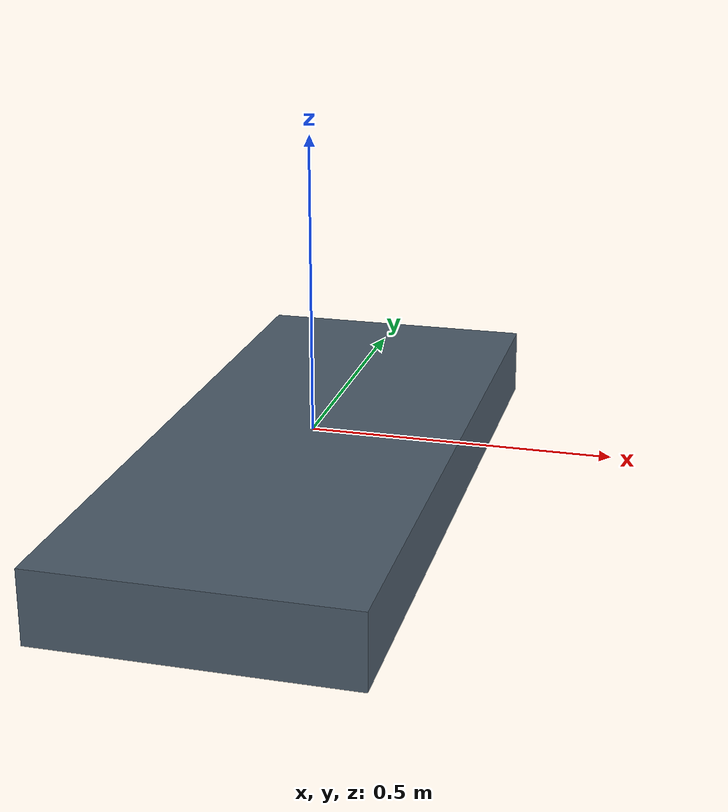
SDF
<?xml version="1.0"?>
<sdf version="1.6">
  <model name="helmet_sampling_bridge">
    <static>true</static>
    <link name="link">
      <collision name="bridge_collision">
        <pose>0 0 -0.06 0 0 0</pose>
        <geometry><box><size>0.50 1.20 0.12</size></box></geometry>
      </collision>
      <visual name="bridge_visual">
        <pose>0 0 -0.06 0 0 0</pose>
        <geometry><box><size>0.50 1.20 0.12</size></box></geometry>
        <material>
          <ambient>0.20 0.24 0.28 1</ambient>
          <diffuse>0.30 0.36 0.42 1</diffuse>
          <specular>0.15 0.15 0.15 1</specular>
        </material>
      </visual>
    </link>
  </model>
</sdf>
